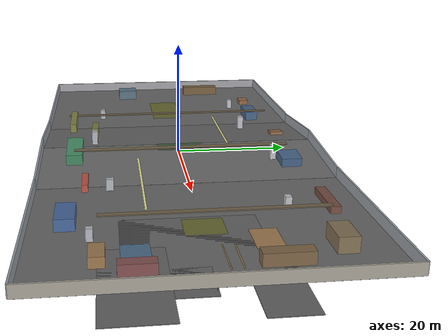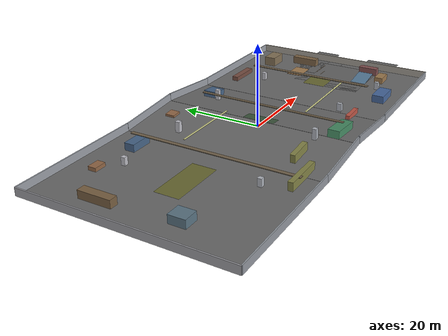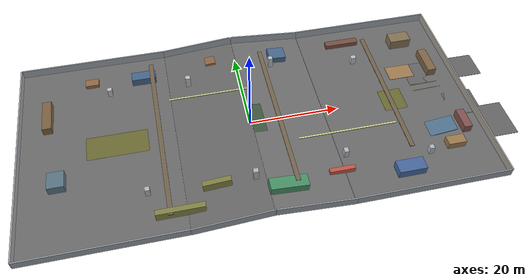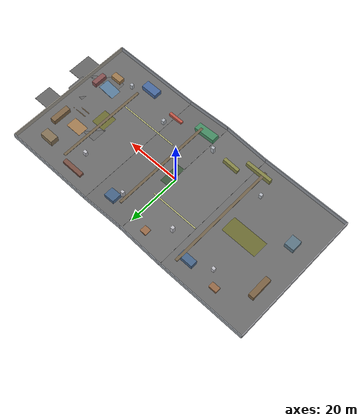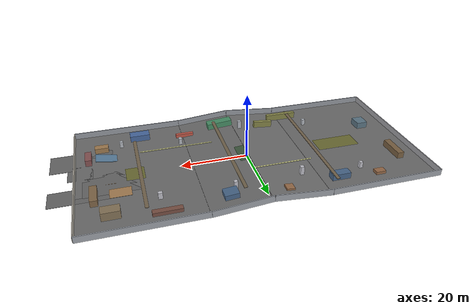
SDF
<sdf version="1.6">
 <world name="shipyard_indoor_100x50">
  <model name="shipyard_shell">
   <static>true</static>
   <link name="structure">
    <collision name="floor_west_flat_collision">
     <pose>-33.33335 0 -0.05 0 0 0</pose>
     <geometry><box><size>33.3333 50 0.1</size></box></geometry>
    </collision>
    <visual name="floor_west_flat_visual">
     <pose>-33.33335 0 -0.05 0 0 0</pose>
     <geometry><box><size>33.3333 50 0.1</size></box></geometry>
     <material><ambient>0.22 0.22 0.22 1</ambient><diffuse>0.42 0.42 0.42 1</diffuse></material>
    </visual>
    <collision name="floor_left_slope_collision">
     <pose>-8.33335 0 0.679170273206564 0 -0.0872664625997165 0</pose>
     <geometry><box><size>16.6667 50 0.1</size></box></geometry>
    </collision>
    <visual name="floor_left_slope_visual">
     <pose>-8.33335 0 0.679170273206564 0 -0.0872664625997165 0</pose>
     <geometry><box><size>16.6667 50 0.1</size></box></geometry>
     <material><ambient>0.22 0.22 0.22 1</ambient><diffuse>0.42 0.42 0.42 1</diffuse></material>
    </visual>
    <collision name="floor_right_slope_collision">
     <pose>8.33335 0 0.679170273206564 0 0.0872664625997165 0</pose>
     <geometry><box><size>16.6667 50 0.1</size></box></geometry>
    </collision>
    <visual name="floor_right_slope_visual">
     <pose>8.33335 0 0.679170273206564 0 0.0872664625997165 0</pose>
     <geometry><box><size>16.6667 50 0.1</size></box></geometry>
     <material><ambient>0.22 0.22 0.22 1</ambient><diffuse>0.42 0.42 0.42 1</diffuse></material>
    </visual>
    <collision name="floor_east_flat_collision">
     <pose>33.33335 0 -0.05 0 0 0</pose>
     <geometry><box><size>33.3333 50 0.1</size></box></geometry>
    </collision>
    <visual name="floor_east_flat_visual">
     <pose>33.33335 0 -0.05 0 0 0</pose>
     <geometry><box><size>33.3333 50 0.1</size></box></geometry>
     <material><ambient>0.22 0.22 0.22 1</ambient><diffuse>0.42 0.42 0.42 1</diffuse></material>
    </visual>
    <collision name="ceiling_west_flat_collision">
     <pose>-33.33335 0 1.95 0 0 0</pose>
     <geometry><box><size>33.3333 50 0.1</size></box></geometry>
    </collision>
    <collision name="ceiling_left_slope_collision">
     <pose>-8.33335 0 2.67917027320656 0 -0.0872664625997165 0</pose>
     <geometry><box><size>16.6667 50 0.1</size></box></geometry>
    </collision>
    <collision name="ceiling_right_slope_collision">
     <pose>8.33335 0 2.67917027320656 0 0.0872664625997165 0</pose>
     <geometry><box><size>16.6667 50 0.1</size></box></geometry>
    </collision>
    <collision name="ceiling_east_flat_collision">
     <pose>33.33335 0 1.95 0 0 0</pose>
     <geometry><box><size>33.3333 50 0.1</size></box></geometry>
    </collision>
    <collision name="north_wall_west_flat_collision">
     <pose>-33.33335 25 0.95 0 0 0</pose>
     <geometry><box><size>33.3333 0.3 1.9</size></box></geometry>
    </collision>
    <visual name="north_wall_west_flat_visual">
     <pose>-33.33335 25 0.95 0 0 0</pose>
     <geometry><box><size>33.3333 0.3 1.9</size></box></geometry>
     <material><ambient>0.40 0.42 0.45 1</ambient><diffuse>0.62 0.64 0.67 1</diffuse></material>
    </visual>
    <collision name="north_wall_left_slope_collision">
     <pose>-8.33335 25 1.62917027320656 0 -0.0872664625997165 0</pose>
     <geometry><box><size>16.6667 0.3 1.9</size></box></geometry>
    </collision>
    <visual name="north_wall_left_slope_visual">
     <pose>-8.33335 25 1.62917027320656 0 -0.0872664625997165 0</pose>
     <geometry><box><size>16.6667 0.3 1.9</size></box></geometry>
     <material><ambient>0.40 0.42 0.45 1</ambient><diffuse>0.62 0.64 0.67 1</diffuse></material>
    </visual>
    <collision name="north_wall_right_slope_collision">
     <pose>8.33335 25 1.62917027320656 0 0.0872664625997165 0</pose>
     <geometry><box><size>16.6667 0.3 1.9</size></box></geometry>
    </collision>
    <visual name="north_wall_right_slope_visual">
     <pose>8.33335 25 1.62917027320656 0 0.0872664625997165 0</pose>
     <geometry><box><size>16.6667 0.3 1.9</size></box></geometry>
     <material><ambient>0.40 0.42 0.45 1</ambient><diffuse>0.62 0.64 0.67 1</diffuse></material>
    </visual>
    <collision name="north_wall_east_flat_collision">
     <pose>33.33335 25 0.95 0 0 0</pose>
     <geometry><box><size>33.3333 0.3 1.9</size></box></geometry>
    </collision>
    <visual name="north_wall_east_flat_visual">
     <pose>33.33335 25 0.95 0 0 0</pose>
     <geometry><box><size>33.3333 0.3 1.9</size></box></geometry>
     <material><ambient>0.40 0.42 0.45 1</ambient><diffuse>0.62 0.64 0.67 1</diffuse></material>
    </visual>
    <collision name="south_wall_west_flat_collision">
     <pose>-33.33335 -25 0.95 0 0 0</pose>
     <geometry><box><size>33.3333 0.3 1.9</size></box></geometry>
    </collision>
    <visual name="south_wall_west_flat_visual">
     <pose>-33.33335 -25 0.95 0 0 0</pose>
     <geometry><box><size>33.3333 0.3 1.9</size></box></geometry>
     <material><ambient>0.38 0.40 0.43 1</ambient><diffuse>0.58 0.60 0.63 1</diffuse></material>
    </visual>
    <collision name="south_wall_left_slope_collision">
     <pose>-8.33335 -25 1.62917027320656 0 -0.0872664625997165 0</pose>
     <geometry><box><size>16.6667 0.3 1.9</size></box></geometry>
    </collision>
    <visual name="south_wall_left_slope_visual">
     <pose>-8.33335 -25 1.62917027320656 0 -0.0872664625997165 0</pose>
     <geometry><box><size>16.6667 0.3 1.9</size></box></geometry>
     <material><ambient>0.38 0.40 0.43 1</ambient><diffuse>0.58 0.60 0.63 1</diffuse></material>
    </visual>
    <collision name="south_wall_right_slope_collision">
     <pose>8.33335 -25 1.62917027320656 0 0.0872664625997165 0</pose>
     <geometry><box><size>16.6667 0.3 1.9</size></box></geometry>
    </collision>
    <visual name="south_wall_right_slope_visual">
     <pose>8.33335 -25 1.62917027320656 0 0.0872664625997165 0</pose>
     <geometry><box><size>16.6667 0.3 1.9</size></box></geometry>
     <material><ambient>0.38 0.40 0.43 1</ambient><diffuse>0.58 0.60 0.63 1</diffuse></material>
    </visual>
    <collision name="south_wall_east_flat_collision">
     <pose>33.33335 -25 0.95 0 0 0</pose>
     <geometry><box><size>33.3333 0.3 1.9</size></box></geometry>
    </collision>
    <visual name="south_wall_east_flat_visual">
     <pose>33.33335 -25 0.95 0 0 0</pose>
     <geometry><box><size>33.3333 0.3 1.9</size></box></geometry>
     <material><ambient>0.38 0.40 0.43 1</ambient><diffuse>0.58 0.60 0.63 1</diffuse></material>
    </visual>
    <collision name="west_wall_collision">
     <pose>-50 0 0.95 0 0 0</pose>
     <geometry><box><size>0.3 50 1.9</size></box></geometry>
    </collision>
    <visual name="west_wall_visual">
     <pose>-50 0 0.95 0 0 0</pose>
     <geometry><box><size>0.3 50 1.9</size></box></geometry>
     <material><ambient>0.40 0.40 0.42 1</ambient><diffuse>0.64 0.64 0.66 1</diffuse></material>
    </visual>
    <collision name="east_wall_collision">
     <pose>50 0 0.95 0 0 0</pose>
     <geometry><box><size>0.3 50 1.9</size></box></geometry>
    </collision>
    <visual name="east_wall_visual">
     <pose>50 0 0.95 0 0 0</pose>
     <geometry><box><size>0.3 50 1.9</size></box></geometry>
     <material><ambient>0.42 0.41 0.39 1</ambient><diffuse>0.66 0.64 0.60 1</diffuse></material>
    </visual>
   </link>
  </model>
  <model name="spawn_lane_markers">
   <static>true</static>
   <link name="markers">
    <visual name="spawn_pad_left_slope_visual">
     <pose>-8.33335 0 0.680170273206564 0 -0.0872664625997165 0</pose>
     <geometry><box><size>13.3333 8 0.002</size></box></geometry>
     <material><ambient>0.18 0.22 0.18 1</ambient><diffuse>0.24 0.34 0.24 1</diffuse></material>
    </visual>
    <visual name="spawn_pad_right_slope_visual">
     <pose>1.5 0 1.41034054641313 0 0.0872664625997165 0</pose>
     <geometry><box><size>3 8 0.002</size></box></geometry>
     <material><ambient>0.18 0.22 0.18 1</ambient><diffuse>0.24 0.34 0.24 1</diffuse></material>
    </visual>
    <visual name="main_lane_west_flat_visual">
     <pose>-29.33335 0 0.002 0 0 0</pose>
     <geometry><box><size>13.3333 6 0.002</size></box></geometry>
     <material><ambient>0.24 0.24 0.18 1</ambient><diffuse>0.42 0.42 0.20 1</diffuse></material>
    </visual>
    <visual name="main_lane_left_slope_visual">
     <pose>-8.33335 0 0.680170273206564 0 -0.0872664625997165 0</pose>
     <geometry><box><size>16.6667 6 0.002</size></box></geometry>
     <material><ambient>0.24 0.24 0.18 1</ambient><diffuse>0.42 0.42 0.20 1</diffuse></material>
    </visual>
    <visual name="main_lane_right_slope_visual">
     <pose>8.33335 0 0.680170273206564 0 0.0872664625997165 0</pose>
     <geometry><box><size>16.6667 6 0.002</size></box></geometry>
     <material><ambient>0.24 0.24 0.18 1</ambient><diffuse>0.42 0.42 0.20 1</diffuse></material>
    </visual>
    <visual name="main_lane_east_flat_visual">
     <pose>33.33335 0 0.002 0 0 0</pose>
     <geometry><box><size>5.3333 6 0.002</size></box></geometry>
     <material><ambient>0.24 0.24 0.18 1</ambient><diffuse>0.42 0.42 0.20 1</diffuse></material>
    </visual>
   </link>
  </model>
  <model name="column_rows">
   <static>true</static>
   <link name="columns">
    <collision name="north_col_1_collision">
     <pose>-30 15 0.95 0 0 0</pose>
     <geometry><box><size>1.0 1.0 1.9</size></box></geometry>
    </collision>
    <visual name="north_col_1_visual">
     <pose>-30 15 0.95 0 0 0</pose>
     <geometry><box><size>1.0 1.0 1.9</size></box></geometry>
     <material><ambient>0.50 0.50 0.52 1</ambient><diffuse>0.75 0.75 0.78 1</diffuse></material>
    </visual>
    <collision name="north_col_2_collision">
     <pose>-12 14 1.48336816155618 0 0 0</pose>
     <geometry><box><size>1.1 1.1 2.96673632311236</size></box></geometry>
    </collision>
    <visual name="north_col_2_visual">
     <pose>-12 14 1.48336816155618 0 0 0</pose>
     <geometry><box><size>1.1 1.1 2.96673632311236</size></box></geometry>
     <material><ambient>0.50 0.50 0.52 1</ambient><diffuse>0.75 0.75 0.78 1</diffuse></material>
    </visual>
    <collision name="north_col_3_collision">
     <pose>8 16 1.64993151634126 0 0 0</pose>
     <geometry><box><size>1.0 1.0 3.29986303268252</size></box></geometry>
    </collision>
    <visual name="north_col_3_visual">
     <pose>8 16 1.64993151634126 0 0 0</pose>
     <geometry><box><size>1.0 1.0 3.29986303268252</size></box></geometry>
     <material><ambient>0.50 0.50 0.52 1</ambient><diffuse>0.75 0.75 0.78 1</diffuse></material>
    </visual>
    <collision name="north_col_4_collision">
     <pose>28 13.5 0.95 0 0 0</pose>
     <geometry><box><size>1.2 1.0 1.9</size></box></geometry>
    </collision>
    <visual name="north_col_4_visual">
     <pose>28 13.5 0.95 0 0 0</pose>
     <geometry><box><size>1.2 1.0 1.9</size></box></geometry>
     <material><ambient>0.50 0.50 0.52 1</ambient><diffuse>0.75 0.75 0.78 1</diffuse></material>
    </visual>
    <collision name="south_col_1_collision">
     <pose>-24 -14 0.95 0 0 0</pose>
     <geometry><box><size>1.0 1.0 1.9</size></box></geometry>
    </collision>
    <visual name="south_col_1_visual">
     <pose>-24 -14 0.95 0 0 0</pose>
     <geometry><box><size>1.0 1.0 1.9</size></box></geometry>
     <material><ambient>0.46 0.48 0.50 1</ambient><diffuse>0.70 0.72 0.75 1</diffuse></material>
    </visual>
    <collision name="south_col_2_collision">
     <pose>-2 -15.5 1.91673632311236 0 0 0</pose>
     <geometry><box><size>1.1 1.0 3.83347264622472</size></box></geometry>
    </collision>
    <visual name="south_col_2_visual">
     <pose>-2 -15.5 1.91673632311236 0 0 0</pose>
     <geometry><box><size>1.1 1.0 3.83347264622472</size></box></geometry>
     <material><ambient>0.46 0.48 0.50 1</ambient><diffuse>0.70 0.72 0.75 1</diffuse></material>
    </visual>
    <collision name="south_col_3_collision">
     <pose>18 -13 0.95 0 0 0</pose>
     <geometry><box><size>1.0 1.2 1.9</size></box></geometry>
    </collision>
    <visual name="south_col_3_visual">
     <pose>18 -13 0.95 0 0 0</pose>
     <geometry><box><size>1.0 1.2 1.9</size></box></geometry>
     <material><ambient>0.46 0.48 0.50 1</ambient><diffuse>0.70 0.72 0.75 1</diffuse></material>
    </visual>
    <collision name="south_col_4_collision">
     <pose>36 -16 0.95 0 0 0</pose>
     <geometry><box><size>1.0 1.0 1.9</size></box></geometry>
    </collision>
    <visual name="south_col_4_visual">
     <pose>36 -16 0.95 0 0 0</pose>
     <geometry><box><size>1.0 1.0 1.9</size></box></geometry>
     <material><ambient>0.46 0.48 0.50 1</ambient><diffuse>0.70 0.72 0.75 1</diffuse></material>
    </visual>
   </link>
  </model>
  <model name="ceiling_beams_and_lights">
   <static>true</static>
   <link name="overhead_features">
    <collision name="beam_west_collision">
     <pose>-20 0 1.87 0 0 0</pose>
     <geometry><box><size>1.0 42 0.16</size></box></geometry>
    </collision>
    <visual name="beam_west_visual">
     <pose>-20 0 1.87 0 0 0</pose>
     <geometry><box><size>1.0 42 0.16</size></box></geometry>
     <material><ambient>0.25 0.22 0.18 1</ambient><diffuse>0.45 0.39 0.30 1</diffuse></material>
    </visual>
    <collision name="beam_center_collision">
     <pose>6 0 2.8 0 0.0872664625997165 0</pose>
     <geometry><box><size>1.0 38 0.16</size></box></geometry>
    </collision>
    <visual name="beam_center_visual">
     <pose>6 0 2.8 0 0.0872664625997165 0</pose>
     <geometry><box><size>1.0 38 0.16</size></box></geometry>
     <material><ambient>0.25 0.22 0.18 1</ambient><diffuse>0.45 0.39 0.30 1</diffuse></material>
    </visual>
    <collision name="beam_east_collision">
     <pose>32 2 1.87 0 0 0</pose>
     <geometry><box><size>1.0 34 0.16</size></box></geometry>
    </collision>
    <visual name="beam_east_visual">
     <pose>32 2 1.87 0 0 0</pose>
     <geometry><box><size>1.0 34 0.16</size></box></geometry>
     <material><ambient>0.25 0.22 0.18 1</ambient><diffuse>0.45 0.39 0.30 1</diffuse></material>
    </visual>
    <visual name="light_strip_north">
     <pose>-8 9 1.66 0 0 0</pose>
     <geometry><box><size>18 0.35 0.15</size></box></geometry>
     <material><ambient>0.7 0.7 0.5 1</ambient><diffuse>0.9 0.9 0.6 1</diffuse></material>
    </visual>
    <visual name="light_strip_south">
     <pose>20 -8 1.92040272064102 0 0 0</pose>
     <geometry><box><size>22 0.35 0.15</size></box></geometry>
     <material><ambient>0.7 0.7 0.5 1</ambient><diffuse>0.9 0.9 0.6 1</diffuse></material>
    </visual>
   </link>
  </model>
  <model name="north_material_zone">
   <static>true</static>
   <link name="materials">
    <collision name="pallet_stack_a_collision">
     <pose>-34 19 0.45 0 0 0</pose>
     <geometry><box><size>3.0 2.0 0.9</size></box></geometry>
    </collision>
    <visual name="pallet_stack_a_visual">
     <pose>-34 19 0.45 0 0 0</pose>
     <geometry><box><size>3.0 2.0 0.9</size></box></geometry>
     <material><ambient>0.35 0.24 0.16 1</ambient><diffuse>0.58 0.41 0.28 1</diffuse></material>
    </visual>
    <collision name="steel_block_a_collision">
     <pose>-22 18 0.9 0 0 0</pose>
     <geometry><box><size>5.5 2.5 1.8</size></box></geometry>
    </collision>
    <visual name="steel_block_a_visual">
     <pose>-22 18 0.9 0 0 0</pose>
     <geometry><box><size>5.5 2.5 1.8</size></box></geometry>
     <material><ambient>0.18 0.25 0.35 1</ambient><diffuse>0.28 0.40 0.54 1</diffuse></material>
    </visual>
    <collision name="pallet_stack_b_collision">
     <pose>-6 20 1.19995124101477 0 -0.0872664625997165 0</pose>
     <geometry><box><size>2.4 2.4 0.6</size></box></geometry>
    </collision>
    <visual name="pallet_stack_b_visual">
     <pose>-6 20 1.19995124101477 0 -0.0872664625997165 0</pose>
     <geometry><box><size>2.4 2.4 0.6</size></box></geometry>
     <material><ambient>0.35 0.24 0.16 1</ambient><diffuse>0.58 0.41 0.28 1</diffuse></material>
    </visual>
    <collision name="steel_block_b_collision">
     <pose>10 18.5 1.39996517215437 0 0.0872664625997165 0</pose>
     <geometry><box><size>4.0 3.5 1.5</size></box></geometry>
    </collision>
    <visual name="steel_block_b_visual">
     <pose>10 18.5 1.39996517215437 0 0.0872664625997165 0</pose>
     <geometry><box><size>4.0 3.5 1.5</size></box></geometry>
     <material><ambient>0.18 0.25 0.35 1</ambient><diffuse>0.28 0.40 0.54 1</diffuse></material>
    </visual>
    <collision name="pipe_bundle_collision">
     <pose>27 20 0.55 0 0 0</pose>
     <geometry><box><size>8.0 1.6 1.1</size></box></geometry>
    </collision>
    <visual name="pipe_bundle_visual">
     <pose>27 20 0.55 0 0 0</pose>
     <geometry><box><size>8.0 1.6 1.1</size></box></geometry>
     <material><ambient>0.24 0.18 0.16 1</ambient><diffuse>0.47 0.31 0.26 1</diffuse></material>
    </visual>
    <collision name="crate_wall_collision">
     <pose>41 17.5 1.2 0 0 0</pose>
     <geometry><box><size>5.0 3.0 2.4</size></box></geometry>
    </collision>
    <visual name="crate_wall_visual">
     <pose>41 17.5 1.2 0 0 0</pose>
     <geometry><box><size>5.0 3.0 2.4</size></box></geometry>
     <material><ambient>0.30 0.26 0.20 1</ambient><diffuse>0.52 0.45 0.34 1</diffuse></material>
    </visual>
   </link>
  </model>
  <model name="south_temporary_zone">
   <static>true</static>
   <link name="temporary_structures">
    <collision name="scaffold_lane_1_collision">
     <pose>-18 -20 1.0 0 0 0</pose>
     <geometry><box><size>10 1.2 2.0</size></box></geometry>
    </collision>
    <visual name="scaffold_lane_1_visual">
     <pose>-18 -20 1.0 0 0 0</pose>
     <geometry><box><size>10 1.2 2.0</size></box></geometry>
     <material><ambient>0.25 0.25 0.16 1</ambient><diffuse>0.52 0.52 0.28 1</diffuse></material>
    </visual>
    <collision name="scaffold_lane_2_collision">
     <pose>-10 -15.5 1.53336816155618 0 -0.0872664625997165 0</pose>
     <geometry><box><size>6 1.2 2.0</size></box></geometry>
    </collision>
    <visual name="scaffold_lane_2_visual">
     <pose>-10 -15.5 1.53336816155618 0 -0.0872664625997165 0</pose>
     <geometry><box><size>6 1.2 2.0</size></box></geometry>
     <material><ambient>0.25 0.25 0.16 1</ambient><diffuse>0.52 0.52 0.28 1</diffuse></material>
    </visual>
    <collision name="container_a_collision">
     <pose>4 -19 1.99991641316914 0 0.0872664625997165 0</pose>
     <geometry><box><size>8 2.8 1.9</size></box></geometry>
    </collision>
    <visual name="container_a_visual">
     <pose>4 -19 1.99991641316914 0 0.0872664625997165 0</pose>
     <geometry><box><size>8 2.8 1.9</size></box></geometry>
     <material><ambient>0.18 0.33 0.24 1</ambient><diffuse>0.28 0.56 0.40 1</diffuse></material>
    </visual>
    <collision name="barrier_cluster_collision">
     <pose>16 -17 0.6 0 0 0</pose>
     <geometry><box><size>5.5 1.0 1.2</size></box></geometry>
    </collision>
    <visual name="barrier_cluster_visual">
     <pose>16 -17 0.6 0 0 0</pose>
     <geometry><box><size>5.5 1.0 1.2</size></box></geometry>
     <material><ambient>0.45 0.20 0.18 1</ambient><diffuse>0.75 0.34 0.28 1</diffuse></material>
    </visual>
    <collision name="container_b_collision">
     <pose>30 -19.5 0.95 0 0 0</pose>
     <geometry><box><size>6 3.0 1.9</size></box></geometry>
    </collision>
    <visual name="container_b_visual">
     <pose>30 -19.5 0.95 0 0 0</pose>
     <geometry><box><size>6 3.0 1.9</size></box></geometry>
     <material><ambient>0.18 0.24 0.36 1</ambient><diffuse>0.28 0.41 0.62 1</diffuse></material>
    </visual>
    <collision name="panel_stack_collision">
     <pose>42 -15 0.8 0 0 0</pose>
     <geometry><box><size>4 2.2 1.6</size></box></geometry>
    </collision>
    <visual name="panel_stack_visual">
     <pose>42 -15 0.8 0 0 0</pose>
     <geometry><box><size>4 2.2 1.6</size></box></geometry>
     <material><ambient>0.36 0.28 0.18 1</ambient><diffuse>0.62 0.48 0.31 1</diffuse></material>
    </visual>
   </link>
  </model>
  <model name="wall_side_features">
   <static>true</static>
   <link name="side_features">
    <collision name="west_rack_collision">
     <pose>-44 10 0.95 0 0 0</pose>
     <geometry><box><size>2.0 8.0 1.9</size></box></geometry>
    </collision>
    <visual name="west_rack_visual">
     <pose>-44 10 0.95 0 0 0</pose>
     <geometry><box><size>2.0 8.0 1.9</size></box></geometry>
     <material><ambient>0.26 0.20 0.14 1</ambient><diffuse>0.48 0.38 0.26 1</diffuse></material>
    </visual>
    <collision name="west_machine_collision">
     <pose>-42 -8 1.0 0 0 0</pose>
     <geometry><box><size>3.5 4.0 2.0</size></box></geometry>
    </collision>
    <visual name="west_machine_visual">
     <pose>-42 -8 1.0 0 0 0</pose>
     <geometry><box><size>3.5 4.0 2.0</size></box></geometry>
     <material><ambient>0.22 0.28 0.32 1</ambient><diffuse>0.36 0.46 0.52 1</diffuse></material>
    </visual>
    <collision name="east_rack_collision">
     <pose>45 9 0.95 0 0 0</pose>
     <geometry><box><size>2.0 7.0 1.9</size></box></geometry>
    </collision>
    <visual name="east_rack_visual">
     <pose>45 9 0.95 0 0 0</pose>
     <geometry><box><size>2.0 7.0 1.9</size></box></geometry>
     <material><ambient>0.28 0.22 0.16 1</ambient><diffuse>0.50 0.40 0.28 1</diffuse></material>
    </visual>
    <collision name="east_cabinet_collision">
     <pose>46 -10 0.95 0 0 0</pose>
     <geometry><box><size>1.8 5.0 1.9</size></box></geometry>
    </collision>
    <visual name="east_cabinet_visual">
     <pose>46 -10 0.95 0 0 0</pose>
     <geometry><box><size>1.8 5.0 1.9</size></box></geometry>
     <material><ambient>0.26 0.18 0.18 1</ambient><diffuse>0.52 0.32 0.32 1</diffuse></material>
    </visual>
   </link>
  </model>
  <model name="east_evaluation_zone">
   <static>true</static>
   <link name="evaluation_features">
    <collision name="eval_floor_left_collision">
     <pose>39 -2 -0.05 0 0 0</pose>
     <geometry><box><size>18 20 0.1</size></box></geometry>
    </collision>
    <visual name="eval_floor_left_visual">
     <pose>39 -2 -0.05 0 0 0</pose>
     <geometry><box><size>18 20 0.1</size></box></geometry>
     <material><ambient>0.24 0.24 0.24 1</ambient><diffuse>0.40 0.40 0.40 1</diffuse></material>
    </visual>
    <collision name="eval_floor_upper_collision">
     <pose>48 6.75 -0.05 0 0 0</pose>
     <geometry><box><size>18 6.5 0.1</size></box></geometry>
    </collision>
    <visual name="eval_floor_upper_visual">
     <pose>48 6.75 -0.05 0 0 0</pose>
     <geometry><box><size>18 6.5 0.1</size></box></geometry>
     <material><ambient>0.24 0.24 0.24 1</ambient><diffuse>0.40 0.40 0.40 1</diffuse></material>
    </visual>
    <collision name="eval_floor_lower_collision">
     <pose>48 -10.5 -0.05 0 0 0</pose>
     <geometry><box><size>18 9.0 0.1</size></box></geometry>
    </collision>
    <visual name="eval_floor_lower_visual">
     <pose>48 -10.5 -0.05 0 0 0</pose>
     <geometry><box><size>18 9.0 0.1</size></box></geometry>
     <material><ambient>0.24 0.24 0.24 1</ambient><diffuse>0.40 0.40 0.40 1</diffuse></material>
    </visual>
    <collision name="step_platform_collision">
     <pose>38 8 0.04 0 0 0</pose>
     <geometry><box><size>6 4 0.08</size></box></geometry>
    </collision>
    <visual name="step_platform_visual">
     <pose>38 8 0.04 0 0 0</pose>
     <geometry><box><size>6 4 0.08</size></box></geometry>
     <material><ambient>0.42 0.32 0.20 1</ambient><diffuse>0.64 0.49 0.32 1</diffuse></material>
    </visual>
    <collision name="groove_lower_shoulder_collision">
     <pose>42.5 1.65 -0.05 0 0 0</pose>
     <geometry><box><size>7.0 0.25 0.1</size></box></geometry>
    </collision>
    <visual name="groove_lower_shoulder_visual">
     <pose>42.5 1.65 -0.05 0 0 0</pose>
     <geometry><box><size>7.0 0.25 0.1</size></box></geometry>
     <material><ambient>0.32 0.26 0.18 1</ambient><diffuse>0.55 0.44 0.30 1</diffuse></material>
    </visual>
    <collision name="groove_upper_shoulder_collision">
     <pose>42.5 3.35 -0.05 0 0 0</pose>
     <geometry><box><size>7.0 0.25 0.1</size></box></geometry>
    </collision>
    <visual name="groove_upper_shoulder_visual">
     <pose>42.5 3.35 -0.05 0 0 0</pose>
     <geometry><box><size>7.0 0.25 0.1</size></box></geometry>
     <material><ambient>0.32 0.26 0.18 1</ambient><diffuse>0.55 0.44 0.30 1</diffuse></material>
    </visual>
    <collision name="hole_left_collision">
     <pose>46.2 -4.1 -0.05 0 0 0</pose>
     <geometry><box><size>2.4 6.8 0.1</size></box></geometry>
    </collision>
    <visual name="hole_left_visual">
     <pose>46.2 -4.1 -0.05 0 0 0</pose>
     <geometry><box><size>2.4 6.8 0.1</size></box></geometry>
     <material><ambient>0.24 0.24 0.24 1</ambient><diffuse>0.40 0.40 0.40 1</diffuse></material>
    </visual>
    <collision name="hole_right_collision">
     <pose>50.8 -4.1 -0.05 0 0 0</pose>
     <geometry><box><size>2.4 6.8 0.1</size></box></geometry>
    </collision>
    <visual name="hole_right_visual">
     <pose>50.8 -4.1 -0.05 0 0 0</pose>
     <geometry><box><size>2.4 6.8 0.1</size></box></geometry>
     <material><ambient>0.24 0.24 0.24 1</ambient><diffuse>0.40 0.40 0.40 1</diffuse></material>
    </visual>
    <collision name="hole_top_collision">
     <pose>48.5 -0.8 -0.05 0 0 0</pose>
     <geometry><box><size>4.6 0.2 0.1</size></box></geometry>
    </collision>
    <visual name="hole_top_visual">
     <pose>48.5 -0.8 -0.05 0 0 0</pose>
     <geometry><box><size>4.6 0.2 0.1</size></box></geometry>
     <material><ambient>0.24 0.24 0.24 1</ambient><diffuse>0.40 0.40 0.40 1</diffuse></material>
    </visual>
    <collision name="hole_bottom_collision">
     <pose>48.5 -7.4 -0.05 0 0 0</pose>
     <geometry><box><size>4.6 0.2 0.1</size></box></geometry>
    </collision>
    <visual name="hole_bottom_visual">
     <pose>48.5 -7.4 -0.05 0 0 0</pose>
     <geometry><box><size>4.6 0.2 0.1</size></box></geometry>
     <material><ambient>0.24 0.24 0.24 1</ambient><diffuse>0.40 0.40 0.40 1</diffuse></material>
    </visual>
    <collision name="ramp_collision">
     <pose>40 -10 0.225 0 -0.149 0</pose>
     <geometry><box><size>8 4 0.2</size></box></geometry>
    </collision>
    <visual name="ramp_visual">
     <pose>40 -10 0.225 0 -0.149 0</pose>
     <geometry><box><size>8 4 0.2</size></box></geometry>
     <material><ambient>0.20 0.26 0.32 1</ambient><diffuse>0.34 0.48 0.60 1</diffuse></material>
    </visual>
   </link>
  </model>
 </world>
</sdf>
